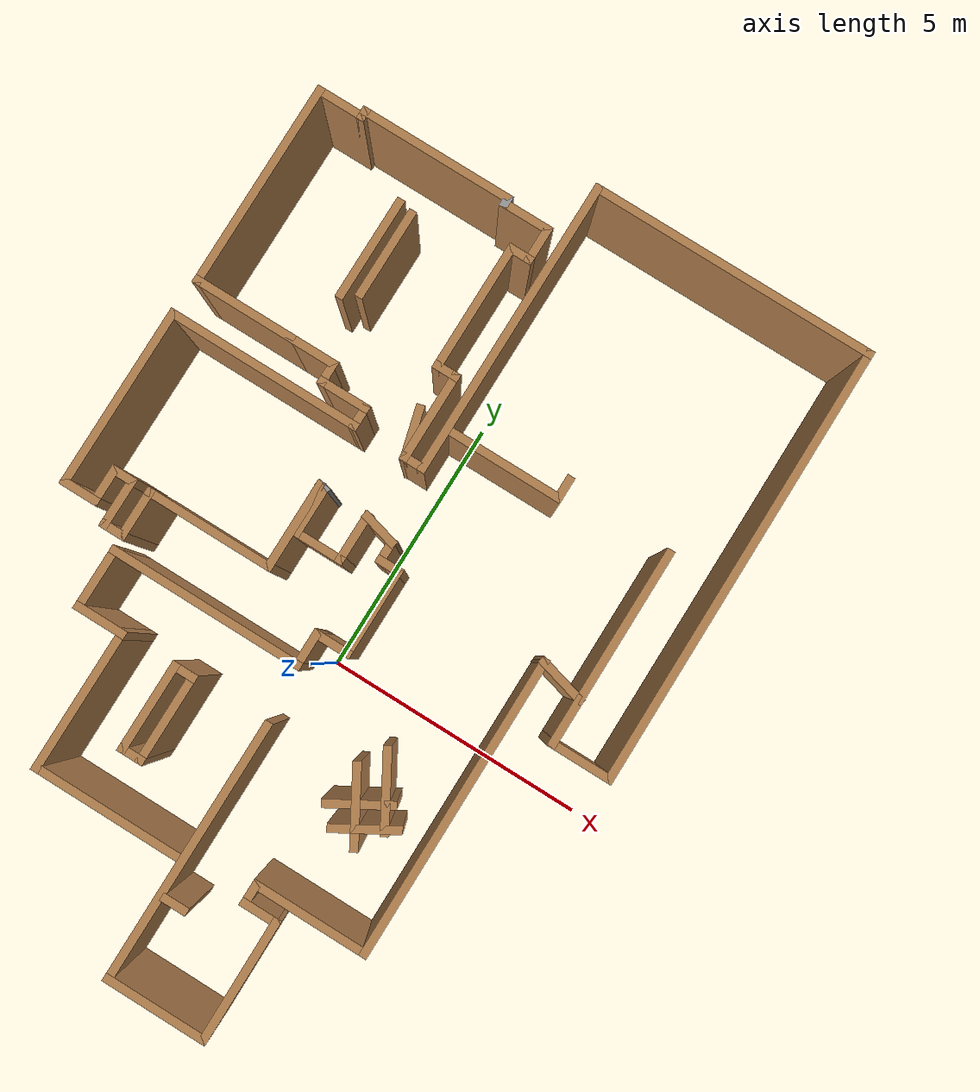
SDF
<?xml version='1.0'?>
<sdf version='1.6'>
  <model name='map_19'>
    <pose frame=''>-0.174403 1.49564 0 0 -0 0</pose>
    <link name='Wall_0'>
      <collision name='Wall_0_Collision'>
        <geometry>
          <box>
            <size>2 0.15 2.5</size>
          </box>
        </geometry>
        <pose frame=''>0 0 1.25 0 -0 0</pose>
      </collision>
      <visual name='Wall_0_Visual'>
        <pose frame=''>0 0 1.25 0 -0 0</pose>
        <geometry>
          <box>
            <size>2 0.15 2.5</size>
          </box>
        </geometry>
        <material>
          <script>
            <uri>file://media/materials/scripts/gazebo.material</uri>
            <name>Gazebo/Wood</name>
          </script>
          <ambient>1 1 1 1</ambient>
        </material>
        <meta>
          <layer>0</layer>
        </meta>
      </visual>
      <pose frame=''>0.811594 -7.72117 0 0 -0 3.14159</pose>
    </link>
    <link name='Wall_1'>
      <collision name='Wall_1_Collision'>
        <geometry>
          <box>
            <size>5 0.15 2.5</size>
          </box>
        </geometry>
        <pose frame=''>0 0 1.25 0 -0 0</pose>
      </collision>
      <visual name='Wall_1_Visual'>
        <pose frame=''>0 0 1.25 0 -0 0</pose>
        <geometry>
          <box>
            <size>5 0.15 2.5</size>
          </box>
        </geometry>
        <material>
          <script>
            <uri>file://media/materials/scripts/gazebo.material</uri>
            <name>Gazebo/Wood</name>
          </script>
          <ambient>1 1 1 1</ambient>
        </material>
        <meta>
          <layer>0</layer>
        </meta>
      </visual>
      <pose frame=''>-0.113406 -5.29617 0 0 -0 1.5708</pose>
    </link>
    <link name='Wall_10'>
      <collision name='Wall_10_Collision'>
        <geometry>
          <box>
            <size>0.75 0.15 2.5</size>
          </box>
        </geometry>
        <pose frame=''>0 0 1.25 0 -0 0</pose>
      </collision>
      <visual name='Wall_10_Visual'>
        <pose frame=''>0 0 1.25 0 -0 0</pose>
        <geometry>
          <box>
            <size>0.75 0.15 2.5</size>
          </box>
        </geometry>
        <material>
          <script>
            <uri>file://media/materials/scripts/gazebo.material</uri>
            <name>Gazebo/Wood</name>
          </script>
          <ambient>1 1 1 1</ambient>
        </material>
        <meta>
          <layer>0</layer>
        </meta>
      </visual>
      <pose frame=''>-0.223852 -1.45974 0 0 -0 1.5708</pose>
    </link>
    <link name='Wall_11'>
      <collision name='Wall_11_Collision'>
        <geometry>
          <box>
            <size>0.75 0.15 2.5</size>
          </box>
        </geometry>
        <pose frame=''>0 0 1.25 0 -0 0</pose>
      </collision>
      <visual name='Wall_11_Visual'>
        <pose frame=''>0 0 1.25 0 -0 0</pose>
        <geometry>
          <box>
            <size>0.75 0.15 2.5</size>
          </box>
        </geometry>
        <material>
          <script>
            <uri>file://media/materials/scripts/gazebo.material</uri>
            <name>Gazebo/Wood</name>
          </script>
          <ambient>1 1 1 1</ambient>
        </material>
        <meta>
          <layer>0</layer>
        </meta>
      </visual>
      <pose frame=''>0.076148 -1.15974 0 0 -0 0</pose>
    </link>
    <link name='Wall_12'>
      <collision name='Wall_12_Collision'>
        <geometry>
          <box>
            <size>1.75 0.15 2.5</size>
          </box>
        </geometry>
        <pose frame=''>0 0 1.25 0 -0 0</pose>
      </collision>
      <visual name='Wall_12_Visual'>
        <pose frame=''>0 0 1.25 0 -0 0</pose>
        <geometry>
          <box>
            <size>1.75 0.15 2.5</size>
          </box>
        </geometry>
        <material>
          <script>
            <uri>file://media/materials/scripts/gazebo.material</uri>
            <name>Gazebo/Wood</name>
          </script>
          <ambient>1 1 1 1</ambient>
        </material>
        <meta>
          <layer>0</layer>
        </meta>
      </visual>
      <pose frame=''>0.376148 -0.359742 0 0 -0 1.5708</pose>
    </link>
    <link name='Wall_13'>
      <collision name='Wall_13_Collision'>
        <geometry>
          <box>
            <size>0.5 0.15 2.5</size>
          </box>
        </geometry>
        <pose frame=''>0 0 1.25 0 -0 0</pose>
      </collision>
      <visual name='Wall_13_Visual'>
        <pose frame=''>0 0 1.25 0 -0 0</pose>
        <geometry>
          <box>
            <size>0.5 0.15 2.5</size>
          </box>
        </geometry>
        <material>
          <script>
            <uri>file://media/materials/scripts/gazebo.material</uri>
            <name>Gazebo/Wood</name>
          </script>
          <ambient>1 1 1 1</ambient>
        </material>
        <meta>
          <layer>0</layer>
        </meta>
      </visual>
      <pose frame=''>0.201148 0.440258 0 0 -0 3.14159</pose>
    </link>
    <link name='Wall_14'>
      <collision name='Wall_14_Collision'>
        <geometry>
          <box>
            <size>0.5 0.15 2.5</size>
          </box>
        </geometry>
        <pose frame=''>0 0 1.25 0 -0 0</pose>
      </collision>
      <visual name='Wall_14_Visual'>
        <pose frame=''>0 0 1.25 0 -0 0</pose>
        <geometry>
          <box>
            <size>0.5 0.15 2.5</size>
          </box>
        </geometry>
        <material>
          <script>
            <uri>file://media/materials/scripts/gazebo.material</uri>
            <name>Gazebo/Wood</name>
          </script>
          <ambient>1 1 1 1</ambient>
        </material>
        <meta>
          <layer>0</layer>
        </meta>
      </visual>
      <pose frame=''>0.026148 0.615258 0 0 -0 1.5708</pose>
    </link>
    <link name='Wall_15'>
      <collision name='Wall_15_Collision'>
        <geometry>
          <box>
            <size>0.75 0.15 2.5</size>
          </box>
        </geometry>
        <pose frame=''>0 0 1.25 0 -0 0</pose>
      </collision>
      <visual name='Wall_15_Visual'>
        <pose frame=''>0 0 1.25 0 -0 0</pose>
        <geometry>
          <box>
            <size>0.75 0.15 2.5</size>
          </box>
        </geometry>
        <material>
          <script>
            <uri>file://media/materials/scripts/gazebo.material</uri>
            <name>Gazebo/Wood</name>
          </script>
          <ambient>1 1 1 1</ambient>
        </material>
        <meta>
          <layer>0</layer>
        </meta>
      </visual>
      <pose frame=''>-0.26363 0.867903 0 0 -0 2.87979</pose>
    </link>
    <link name='Wall_16'>
      <collision name='Wall_16_Collision'>
        <geometry>
          <box>
            <size>1 0.15 2.5</size>
          </box>
        </geometry>
        <pose frame=''>0 0 1.25 0 -0 0</pose>
      </collision>
      <visual name='Wall_16_Visual'>
        <pose frame=''>0 0 1.25 0 -0 0</pose>
        <geometry>
          <box>
            <size>1 0.15 2.5</size>
          </box>
        </geometry>
        <material>
          <script>
            <uri>file://media/materials/scripts/gazebo.material</uri>
            <name>Gazebo/Wood</name>
          </script>
          <ambient>1 1 1 1</ambient>
        </material>
        <meta>
          <layer>0</layer>
        </meta>
      </visual>
      <pose frame=''>-0.553407 0.520549 0 0 -0 -1.5708</pose>
    </link>
    <link name='Wall_17'>
      <collision name='Wall_17_Collision'>
        <geometry>
          <box>
            <size>1 0.15 2.5</size>
          </box>
        </geometry>
        <pose frame=''>0 0 1.25 0 -0 0</pose>
      </collision>
      <visual name='Wall_17_Visual'>
        <pose frame=''>0 0 1.25 0 -0 0</pose>
        <geometry>
          <box>
            <size>1 0.15 2.5</size>
          </box>
        </geometry>
        <material>
          <script>
            <uri>file://media/materials/scripts/gazebo.material</uri>
            <name>Gazebo/Wood</name>
          </script>
          <ambient>1 1 1 1</ambient>
        </material>
        <meta>
          <layer>0</layer>
        </meta>
      </visual>
      <pose frame=''>-0.978407 0.095549 0 0 -0 3.14159</pose>
    </link>
    <link name='Wall_18'>
      <collision name='Wall_18_Collision'>
        <geometry>
          <box>
            <size>1 0.15 2.5</size>
          </box>
        </geometry>
        <pose frame=''>0 0 1.25 0 -0 0</pose>
      </collision>
      <visual name='Wall_18_Visual'>
        <pose frame=''>0 0 1.25 0 -0 0</pose>
        <geometry>
          <box>
            <size>1 0.15 2.5</size>
          </box>
        </geometry>
        <material>
          <script>
            <uri>file://media/materials/scripts/gazebo.material</uri>
            <name>Gazebo/Wood</name>
          </script>
          <ambient>1 1 1 1</ambient>
        </material>
        <meta>
          <layer>0</layer>
        </meta>
      </visual>
      <pose frame=''>-1.40341 0.520549 0 0 -0 1.5708</pose>
    </link>
    <link name='Wall_19'>
      <collision name='Wall_19_Collision'>
        <geometry>
          <box>
            <size>0.25 0.15 2.5</size>
          </box>
        </geometry>
        <pose frame=''>0 0 1.25 0 -0 0</pose>
      </collision>
      <visual name='Wall_19_Visual'>
        <pose frame=''>0 0 1.25 0 -0 0</pose>
        <geometry>
          <box>
            <size>0.25 0.15 2.5</size>
          </box>
        </geometry>
        <material>
          <script>
            <uri>file://media/materials/scripts/gazebo.material</uri>
            <name>Gazebo/Grey</name>
          </script>
          <ambient>1 1 1 1</ambient>
        </material>
        <meta>
          <layer>0</layer>
        </meta>
      </visual>
      <pose frame=''>-1.4517 0.95849 0 0 -0 2.87979</pose>
    </link>
    <link name='Wall_20'>
      <collision name='Wall_20_Collision'>
        <geometry>
          <box>
            <size>1.75 0.15 2.5</size>
          </box>
        </geometry>
        <pose frame=''>0 0 1.25 0 -0 0</pose>
      </collision>
      <visual name='Wall_20_Visual'>
        <pose frame=''>0 0 1.25 0 -0 0</pose>
        <geometry>
          <box>
            <size>1.75 0.15 2.5</size>
          </box>
        </geometry>
        <material>
          <script>
            <uri>file://media/materials/scripts/gazebo.material</uri>
            <name>Gazebo/Wood</name>
          </script>
          <ambient>1 1 1 1</ambient>
        </material>
        <meta>
          <layer>0</layer>
        </meta>
      </visual>
      <pose frame=''>-1.5 0.171431 0 0 -0 -1.5708</pose>
    </link>
    <link name='Wall_21'>
      <collision name='Wall_21_Collision'>
        <geometry>
          <box>
            <size>2.5 0.15 2.5</size>
          </box>
        </geometry>
        <pose frame=''>0 0 1.25 0 -0 0</pose>
      </collision>
      <visual name='Wall_21_Visual'>
        <pose frame=''>0 0 1.25 0 -0 0</pose>
        <geometry>
          <box>
            <size>2.5 0.15 2.5</size>
          </box>
        </geometry>
        <material>
          <script>
            <uri>file://media/materials/scripts/gazebo.material</uri>
            <name>Gazebo/Wood</name>
          </script>
          <ambient>1 1 1 1</ambient>
        </material>
        <meta>
          <layer>0</layer>
        </meta>
      </visual>
      <pose frame=''>-2.675 -0.628569 0 0 -0 3.14159</pose>
    </link>
    <link name='Wall_22'>
      <collision name='Wall_22_Collision'>
        <geometry>
          <box>
            <size>1 0.15 2.5</size>
          </box>
        </geometry>
        <pose frame=''>0 0 1.25 0 -0 0</pose>
      </collision>
      <visual name='Wall_22_Visual'>
        <pose frame=''>0 0 1.25 0 -0 0</pose>
        <geometry>
          <box>
            <size>1 0.15 2.5</size>
          </box>
        </geometry>
        <material>
          <script>
            <uri>file://media/materials/scripts/gazebo.material</uri>
            <name>Gazebo/Wood</name>
          </script>
          <ambient>1 1 1 1</ambient>
        </material>
        <meta>
          <layer>0</layer>
        </meta>
      </visual>
      <pose frame=''>-3.85 -1.05357 0 0 -0 -1.5708</pose>
    </link>
    <link name='Wall_23'>
      <collision name='Wall_23_Collision'>
        <geometry>
          <box>
            <size>0.5 0.15 2.5</size>
          </box>
        </geometry>
        <pose frame=''>0 0 1.25 0 -0 0</pose>
      </collision>
      <visual name='Wall_23_Visual'>
        <pose frame=''>0 0 1.25 0 -0 0</pose>
        <geometry>
          <box>
            <size>0.5 0.15 2.5</size>
          </box>
        </geometry>
        <material>
          <script>
            <uri>file://media/materials/scripts/gazebo.material</uri>
            <name>Gazebo/Wood</name>
          </script>
          <ambient>1 1 1 1</ambient>
        </material>
        <meta>
          <layer>0</layer>
        </meta>
      </visual>
      <pose frame=''>-4.025 -1.47857 0 0 -0 3.14159</pose>
    </link>
    <link name='Wall_24'>
      <collision name='Wall_24_Collision'>
        <geometry>
          <box>
            <size>1 0.15 2.5</size>
          </box>
        </geometry>
        <pose frame=''>0 0 1.25 0 -0 0</pose>
      </collision>
      <visual name='Wall_24_Visual'>
        <pose frame=''>0 0 1.25 0 -0 0</pose>
        <geometry>
          <box>
            <size>1 0.15 2.5</size>
          </box>
        </geometry>
        <material>
          <script>
            <uri>file://media/materials/scripts/gazebo.material</uri>
            <name>Gazebo/Wood</name>
          </script>
          <ambient>1 1 1 1</ambient>
        </material>
        <meta>
          <layer>0</layer>
        </meta>
      </visual>
      <pose frame=''>-4.2 -1.05357 0 0 -0 1.5708</pose>
    </link>
    <link name='Wall_25'>
      <collision name='Wall_25_Collision'>
        <geometry>
          <box>
            <size>0.5 0.15 2.5</size>
          </box>
        </geometry>
        <pose frame=''>0 0 1.25 0 -0 0</pose>
      </collision>
      <visual name='Wall_25_Visual'>
        <pose frame=''>0 0 1.25 0 -0 0</pose>
        <geometry>
          <box>
            <size>0.5 0.15 2.5</size>
          </box>
        </geometry>
        <material>
          <script>
            <uri>file://media/materials/scripts/gazebo.material</uri>
            <name>Gazebo/Wood</name>
          </script>
          <ambient>1 1 1 1</ambient>
        </material>
        <meta>
          <layer>0</layer>
        </meta>
      </visual>
      <pose frame=''>-4.375 -0.628569 0 0 -0 3.14159</pose>
    </link>
    <link name='Wall_26'>
      <collision name='Wall_26_Collision'>
        <geometry>
          <box>
            <size>0.75 0.15 2.5</size>
          </box>
        </geometry>
        <pose frame=''>0 0 1.25 0 -0 0</pose>
      </collision>
      <visual name='Wall_26_Visual'>
        <pose frame=''>0 0 1.25 0 -0 0</pose>
        <geometry>
          <box>
            <size>0.75 0.15 2.5</size>
          </box>
        </geometry>
        <material>
          <script>
            <uri>file://media/materials/scripts/gazebo.material</uri>
            <name>Gazebo/Wood</name>
          </script>
          <ambient>1 1 1 1</ambient>
        </material>
        <meta>
          <layer>0</layer>
        </meta>
      </visual>
      <pose frame=''>-4.55 -0.928569 0 0 -0 -1.5708</pose>
    </link>
    <link name='Wall_27'>
      <collision name='Wall_27_Collision'>
        <geometry>
          <box>
            <size>0.75 0.15 2.5</size>
          </box>
        </geometry>
        <pose frame=''>0 0 1.25 0 -0 0</pose>
      </collision>
      <visual name='Wall_27_Visual'>
        <pose frame=''>0 0 1.25 0 -0 0</pose>
        <geometry>
          <box>
            <size>0.75 0.15 2.5</size>
          </box>
        </geometry>
        <material>
          <script>
            <uri>file://media/materials/scripts/gazebo.material</uri>
            <name>Gazebo/Wood</name>
          </script>
          <ambient>1 1 1 1</ambient>
        </material>
        <meta>
          <layer>0</layer>
        </meta>
      </visual>
      <pose frame=''>-4.85 -1.22857 0 0 -0 3.14159</pose>
    </link>
    <link name='Wall_28'>
      <collision name='Wall_28_Collision'>
        <geometry>
          <box>
            <size>3.5 0.15 2.5</size>
          </box>
        </geometry>
        <pose frame=''>0 0 1.25 0 -0 0</pose>
      </collision>
      <visual name='Wall_28_Visual'>
        <pose frame=''>0 0 1.25 0 -0 0</pose>
        <geometry>
          <box>
            <size>3.5 0.15 2.5</size>
          </box>
        </geometry>
        <material>
          <script>
            <uri>file://media/materials/scripts/gazebo.material</uri>
            <name>Gazebo/Wood</name>
          </script>
          <ambient>1 1 1 1</ambient>
        </material>
        <meta>
          <layer>0</layer>
        </meta>
      </visual>
      <pose frame=''>-5.15 0.446431 0 0 -0 1.5708</pose>
    </link>
    <link name='Wall_29'>
      <collision name='Wall_29_Collision'>
        <geometry>
          <box>
            <size>3.75 0.15 2.5</size>
          </box>
        </geometry>
        <pose frame=''>0 0 1.25 0 -0 0</pose>
      </collision>
      <visual name='Wall_29_Visual'>
        <pose frame=''>0 0 1.25 0 -0 0</pose>
        <geometry>
          <box>
            <size>3.75 0.15 2.5</size>
          </box>
        </geometry>
        <material>
          <script>
            <uri>file://media/materials/scripts/gazebo.material</uri>
            <name>Gazebo/Wood</name>
          </script>
          <ambient>1 1 1 1</ambient>
        </material>
        <meta>
          <layer>0</layer>
        </meta>
      </visual>
      <pose frame=''>-3.35 2.12143 0 0 -0 0</pose>
    </link>
    <link name='Wall_3'>
      <collision name='Wall_3_Collision'>
        <geometry>
          <box>
            <size>0.5 0.15 2.5</size>
          </box>
        </geometry>
        <pose frame=''>0 0 1.25 0 -0 0</pose>
      </collision>
      <visual name='Wall_3_Visual'>
        <pose frame=''>0 0 1.25 0 -0 0</pose>
        <geometry>
          <box>
            <size>0.5 0.15 2.5</size>
          </box>
        </geometry>
        <material>
          <script>
            <uri>file://media/materials/scripts/gazebo.material</uri>
            <name>Gazebo/Wood</name>
          </script>
          <ambient>1 1 1 1</ambient>
        </material>
        <meta>
          <layer>0</layer>
        </meta>
      </visual>
      <pose frame=''>0.160001 -6.13273 0 0 -0 3.14159</pose>
    </link>
    <link name='Wall_31'>
      <collision name='Wall_31_Collision'>
        <geometry>
          <box>
            <size>0.5 0.15 2.5</size>
          </box>
        </geometry>
        <pose frame=''>0 0 1.25 0 -0 0</pose>
      </collision>
      <visual name='Wall_31_Visual'>
        <pose frame=''>0 0 1.25 0 -0 0</pose>
        <geometry>
          <box>
            <size>0.5 0.15 2.5</size>
          </box>
        </geometry>
        <material>
          <script>
            <uri>file://media/materials/scripts/gazebo.material</uri>
            <name>Gazebo/Wood</name>
          </script>
          <ambient>1 1 1 1</ambient>
        </material>
        <meta>
          <layer>0</layer>
        </meta>
      </visual>
      <pose frame=''>-1.55 2.29643 0 0 -0 1.5708</pose>
    </link>
    <link name='Wall_32'>
      <collision name='Wall_32_Collision'>
        <geometry>
          <box>
            <size>1 0.15 2.5</size>
          </box>
        </geometry>
        <pose frame=''>0 0 1.25 0 -0 0</pose>
      </collision>
      <visual name='Wall_32_Visual'>
        <pose frame=''>0 0 1.25 0 -0 0</pose>
        <geometry>
          <box>
            <size>1 0.15 2.5</size>
          </box>
        </geometry>
        <material>
          <script>
            <uri>file://media/materials/scripts/gazebo.material</uri>
            <name>Gazebo/Wood</name>
          </script>
          <ambient>1 1 1 1</ambient>
        </material>
        <meta>
          <layer>0</layer>
        </meta>
      </visual>
      <pose frame=''>-1.975 2.47143 0 0 -0 3.14159</pose>
    </link>
    <link name='Wall_33'>
      <collision name='Wall_33_Collision'>
        <geometry>
          <box>
            <size>0.5 0.15 2.5</size>
          </box>
        </geometry>
        <pose frame=''>0 0 1.25 0 -0 0</pose>
      </collision>
      <visual name='Wall_33_Visual'>
        <pose frame=''>0 0 1.25 0 -0 0</pose>
        <geometry>
          <box>
            <size>0.5 0.15 2.5</size>
          </box>
        </geometry>
        <material>
          <script>
            <uri>file://media/materials/scripts/gazebo.material</uri>
            <name>Gazebo/Wood</name>
          </script>
          <ambient>1 1 1 1</ambient>
        </material>
        <meta>
          <layer>0</layer>
        </meta>
      </visual>
      <pose frame=''>-2.4 2.64643 0 0 -0 1.5708</pose>
    </link>
    <link name='Wall_34'>
      <collision name='Wall_34_Collision'>
        <geometry>
          <box>
            <size>1 0.15 2.5</size>
          </box>
        </geometry>
        <pose frame=''>0 0 1.25 0 -0 0</pose>
      </collision>
      <visual name='Wall_34_Visual'>
        <pose frame=''>0 0 1.25 0 -0 0</pose>
        <geometry>
          <box>
            <size>1 0.15 2.5</size>
          </box>
        </geometry>
        <material>
          <script>
            <uri>file://media/materials/scripts/gazebo.material</uri>
            <name>Gazebo/Wood</name>
          </script>
          <ambient>1 1 1 1</ambient>
        </material>
        <meta>
          <layer>0</layer>
        </meta>
      </visual>
      <pose frame=''>-2.825 2.82143 0 0 -0 3.14159</pose>
    </link>
    <link name='Wall_35'>
      <collision name='Wall_35_Collision'>
        <geometry>
          <box>
            <size>2 0.15 2.5</size>
          </box>
        </geometry>
        <pose frame=''>0 0 1.25 0 -0 0</pose>
      </collision>
      <visual name='Wall_35_Visual'>
        <pose frame=''>0 0 1.25 0 -0 0</pose>
        <geometry>
          <box>
            <size>2 0.15 2.5</size>
          </box>
        </geometry>
        <material>
          <script>
            <uri>file://media/materials/scripts/gazebo.material</uri>
            <name>Gazebo/Wood</name>
          </script>
          <ambient>1 1 1 1</ambient>
        </material>
        <meta>
          <layer>0</layer>
        </meta>
      </visual>
      <pose frame=''>-4.175 2.82143 0 0 -0 3.14159</pose>
    </link>
    <link name='Wall_36'>
      <collision name='Wall_36_Collision'>
        <geometry>
          <box>
            <size>4 0.15 2.5</size>
          </box>
        </geometry>
        <pose frame=''>0 0 1.25 0 -0 0</pose>
      </collision>
      <visual name='Wall_36_Visual'>
        <pose frame=''>0 0 1.25 0 -0 0</pose>
        <geometry>
          <box>
            <size>4 0.15 2.5</size>
          </box>
        </geometry>
        <material>
          <script>
            <uri>file://media/materials/scripts/gazebo.material</uri>
            <name>Gazebo/Wood</name>
          </script>
          <ambient>1 1 1 1</ambient>
        </material>
        <meta>
          <layer>0</layer>
        </meta>
      </visual>
      <pose frame=''>-5.1 4.74643 0 0 -0 1.5708</pose>
    </link>
    <link name='Wall_37'>
      <collision name='Wall_37_Collision'>
        <geometry>
          <box>
            <size>1 0.15 2.5</size>
          </box>
        </geometry>
        <pose frame=''>0 0 1.25 0 -0 0</pose>
      </collision>
      <visual name='Wall_37_Visual'>
        <pose frame=''>0 0 1.25 0 -0 0</pose>
        <geometry>
          <box>
            <size>1 0.15 2.5</size>
          </box>
        </geometry>
        <material>
          <script>
            <uri>file://media/materials/scripts/gazebo.material</uri>
            <name>Gazebo/Wood</name>
          </script>
          <ambient>1 1 1 1</ambient>
        </material>
        <meta>
          <layer>0</layer>
        </meta>
      </visual>
      <pose frame=''>-4.675 6.67143 0 0 -0 0</pose>
    </link>
    <link name='Wall_39'>
      <collision name='Wall_39_Collision'>
        <geometry>
          <box>
            <size>0.25 0.15 2.5</size>
          </box>
        </geometry>
        <pose frame=''>0 0 1.25 0 -0 0</pose>
      </collision>
      <visual name='Wall_39_Visual'>
        <pose frame=''>0 0 1.25 0 -0 0</pose>
        <geometry>
          <box>
            <size>0.25 0.15 2.5</size>
          </box>
        </geometry>
        <material>
          <script>
            <uri>file://media/materials/scripts/gazebo.material</uri>
            <name>Gazebo/Wood</name>
          </script>
          <ambient>1 1 1 1</ambient>
        </material>
        <meta>
          <layer>0</layer>
        </meta>
      </visual>
      <pose frame=''>-4.25 6.72143 0 0 -0 1.5708</pose>
    </link>
    <link name='Wall_40'>
      <collision name='Wall_40_Collision'>
        <geometry>
          <box>
            <size>3 0.15 2.5</size>
          </box>
        </geometry>
        <pose frame=''>0 0 1.25 0 -0 0</pose>
      </collision>
      <visual name='Wall_40_Visual'>
        <pose frame=''>0 0 1.25 0 -0 0</pose>
        <geometry>
          <box>
            <size>3 0.15 2.5</size>
          </box>
        </geometry>
        <material>
          <script>
            <uri>file://media/materials/scripts/gazebo.material</uri>
            <name>Gazebo/Wood</name>
          </script>
          <ambient>1 1 1 1</ambient>
        </material>
        <meta>
          <layer>0</layer>
        </meta>
      </visual>
      <pose frame=''>-2.825 6.77143 0 0 -0 0</pose>
    </link>
    <link name='Wall_41'>
      <collision name='Wall_41_Collision'>
        <geometry>
          <box>
            <size>0.25 0.15 2.5</size>
          </box>
        </geometry>
        <pose frame=''>0 0 1.25 0 -0 0</pose>
      </collision>
      <visual name='Wall_41_Visual'>
        <pose frame=''>0 0 1.25 0 -0 0</pose>
        <geometry>
          <box>
            <size>0.25 0.15 2.5</size>
          </box>
        </geometry>
        <material>
          <script>
            <uri>file://media/materials/scripts/gazebo.material</uri>
            <name>Gazebo/Grey</name>
          </script>
          <ambient>1 1 1 1</ambient>
        </material>
        <meta>
          <layer>0</layer>
        </meta>
      </visual>
      <pose frame=''>-1.4 6.72143 0 0 -0 -1.5708</pose>
    </link>
    <link name='Wall_42'>
      <collision name='Wall_42_Collision'>
        <geometry>
          <box>
            <size>1 0.15 2.5</size>
          </box>
        </geometry>
        <pose frame=''>0 0 1.25 0 -0 0</pose>
      </collision>
      <visual name='Wall_42_Visual'>
        <pose frame=''>0 0 1.25 0 -0 0</pose>
        <geometry>
          <box>
            <size>1 0.15 2.5</size>
          </box>
        </geometry>
        <material>
          <script>
            <uri>file://media/materials/scripts/gazebo.material</uri>
            <name>Gazebo/Wood</name>
          </script>
          <ambient>1 1 1 1</ambient>
        </material>
        <meta>
          <layer>0</layer>
        </meta>
      </visual>
      <pose frame=''>-0.975 6.67143 0 0 -0 0</pose>
    </link>
    <link name='Wall_43'>
      <collision name='Wall_43_Collision'>
        <geometry>
          <box>
            <size>0.75 0.15 2.5</size>
          </box>
        </geometry>
        <pose frame=''>0 0 1.25 0 -0 0</pose>
      </collision>
      <visual name='Wall_43_Visual'>
        <pose frame=''>0 0 1.25 0 -0 0</pose>
        <geometry>
          <box>
            <size>0.75 0.15 2.5</size>
          </box>
        </geometry>
        <material>
          <script>
            <uri>file://media/materials/scripts/gazebo.material</uri>
            <name>Gazebo/Wood</name>
          </script>
          <ambient>1 1 1 1</ambient>
        </material>
        <meta>
          <layer>0</layer>
        </meta>
      </visual>
      <pose frame=''>-0.55 6.37143 0 0 -0 -1.5708</pose>
    </link>
    <link name='Wall_44'>
      <collision name='Wall_44_Collision'>
        <geometry>
          <box>
            <size>0.5 0.15 2.5</size>
          </box>
        </geometry>
        <pose frame=''>0 0 1.25 0 -0 0</pose>
      </collision>
      <visual name='Wall_44_Visual'>
        <pose frame=''>0 0 1.25 0 -0 0</pose>
        <geometry>
          <box>
            <size>0.5 0.15 2.5</size>
          </box>
        </geometry>
        <material>
          <script>
            <uri>file://media/materials/scripts/gazebo.material</uri>
            <name>Gazebo/Wood</name>
          </script>
          <ambient>1 1 1 1</ambient>
        </material>
        <meta>
          <layer>0</layer>
        </meta>
      </visual>
      <pose frame=''>-0.725 6.07143 0 0 -0 3.14159</pose>
    </link>
    <link name='Wall_45'>
      <collision name='Wall_45_Collision'>
        <geometry>
          <box>
            <size>2.5 0.15 2.5</size>
          </box>
        </geometry>
        <pose frame=''>0 0 1.25 0 -0 0</pose>
      </collision>
      <visual name='Wall_45_Visual'>
        <pose frame=''>0 0 1.25 0 -0 0</pose>
        <geometry>
          <box>
            <size>2.5 0.15 2.5</size>
          </box>
        </geometry>
        <material>
          <script>
            <uri>file://media/materials/scripts/gazebo.material</uri>
            <name>Gazebo/Wood</name>
          </script>
          <ambient>1 1 1 1</ambient>
        </material>
        <meta>
          <layer>0</layer>
        </meta>
      </visual>
      <pose frame=''>-0.9 4.89643 0 0 -0 -1.5708</pose>
    </link>
    <link name='Wall_46'>
      <collision name='Wall_46_Collision'>
        <geometry>
          <box>
            <size>0.5 0.15 2.5</size>
          </box>
        </geometry>
        <pose frame=''>0 0 1.25 0 -0 0</pose>
      </collision>
      <visual name='Wall_46_Visual'>
        <pose frame=''>0 0 1.25 0 -0 0</pose>
        <geometry>
          <box>
            <size>0.5 0.15 2.5</size>
          </box>
        </geometry>
        <material>
          <script>
            <uri>file://media/materials/scripts/gazebo.material</uri>
            <name>Gazebo/Wood</name>
          </script>
          <ambient>1 1 1 1</ambient>
        </material>
        <meta>
          <layer>0</layer>
        </meta>
      </visual>
      <pose frame=''>-0.725 3.72143 0 0 -0 0</pose>
    </link>
    <link name='Wall_47'>
      <collision name='Wall_47_Collision'>
        <geometry>
          <box>
            <size>1.75 0.15 2.5</size>
          </box>
        </geometry>
        <pose frame=''>0 0 1.25 0 -0 0</pose>
      </collision>
      <visual name='Wall_47_Visual'>
        <pose frame=''>0 0 1.25 0 -0 0</pose>
        <geometry>
          <box>
            <size>1.75 0.15 2.5</size>
          </box>
        </geometry>
        <material>
          <script>
            <uri>file://media/materials/scripts/gazebo.material</uri>
            <name>Gazebo/Wood</name>
          </script>
          <ambient>1 1 1 1</ambient>
        </material>
        <meta>
          <layer>0</layer>
        </meta>
      </visual>
      <pose frame=''>-0.55 2.92143 0 0 -0 -1.5708</pose>
    </link>
    <link name='Wall_48'>
      <collision name='Wall_48_Collision'>
        <geometry>
          <box>
            <size>1 0.15 2.5</size>
          </box>
        </geometry>
        <pose frame=''>0 0 1.25 0 -0 0</pose>
      </collision>
      <visual name='Wall_48_Visual'>
        <pose frame=''>0 0 1.25 0 -0 0</pose>
        <geometry>
          <box>
            <size>1 0.15 2.5</size>
          </box>
        </geometry>
        <material>
          <script>
            <uri>file://media/materials/scripts/gazebo.material</uri>
            <name>Gazebo/Wood</name>
          </script>
          <ambient>1 1 1 1</ambient>
        </material>
        <meta>
          <layer>0</layer>
        </meta>
      </visual>
      <pose frame=''>-0.659998 2.53195 0 0 -0 1.8326</pose>
    </link>
    <link name='Wall_5'>
      <collision name='Wall_5_Collision'>
        <geometry>
          <box>
            <size>3 0.15 2.5</size>
          </box>
        </geometry>
        <pose frame=''>0 0 1.25 0 -0 0</pose>
      </collision>
      <visual name='Wall_5_Visual'>
        <pose frame=''>0 0 1.25 0 -0 0</pose>
        <geometry>
          <box>
            <size>3 0.15 2.5</size>
          </box>
        </geometry>
        <material>
          <script>
            <uri>file://media/materials/scripts/gazebo.material</uri>
            <name>Gazebo/Wood</name>
          </script>
          <ambient>1 1 1 1</ambient>
        </material>
        <meta>
          <layer>0</layer>
        </meta>
      </visual>
      <pose frame=''>-1.54885 -5.45974 0 0 -0 3.14159</pose>
    </link>
    <link name='Wall_50'>
      <collision name='Wall_50_Collision'>
        <geometry>
          <box>
            <size>0.5 0.15 2.5</size>
          </box>
        </geometry>
        <pose frame=''>0 0 1.25 0 -0 0</pose>
      </collision>
      <visual name='Wall_50_Visual'>
        <pose frame=''>0 0 1.25 0 -0 0</pose>
        <geometry>
          <box>
            <size>0.5 0.15 2.5</size>
          </box>
        </geometry>
        <material>
          <script>
            <uri>file://media/materials/scripts/gazebo.material</uri>
            <name>Gazebo/Wood</name>
          </script>
          <ambient>1 1 1 1</ambient>
        </material>
        <meta>
          <layer>0</layer>
        </meta>
      </visual>
      <pose frame=''>-0.375 2.12143 0 0 -0 0</pose>
    </link>
    <link name='Wall_53'>
      <collision name='Wall_53_Collision'>
        <geometry>
          <box>
            <size>5.75 0.15 2.5</size>
          </box>
        </geometry>
        <pose frame=''>0 0 1.25 0 -0 0</pose>
      </collision>
      <visual name='Wall_53_Visual'>
        <pose frame=''>0 0 1.25 0 -0 0</pose>
        <geometry>
          <box>
            <size>5.75 0.15 2.5</size>
          </box>
        </geometry>
        <material>
          <script>
            <uri>file://media/materials/scripts/gazebo.material</uri>
            <name>Gazebo/Wood</name>
          </script>
          <ambient>1 1 1 1</ambient>
        </material>
        <meta>
          <layer>0</layer>
        </meta>
      </visual>
      <pose frame=''>-0.2 4.92143 0 0 -0 1.5708</pose>
    </link>
    <link name='Wall_54'>
      <collision name='Wall_54_Collision'>
        <geometry>
          <box>
            <size>5.5 0.15 2.5</size>
          </box>
        </geometry>
        <pose frame=''>0 0 1.25 0 -0 0</pose>
      </collision>
      <visual name='Wall_54_Visual'>
        <pose frame=''>0 0 1.25 0 -0 0</pose>
        <geometry>
          <box>
            <size>5.5 0.15 2.5</size>
          </box>
        </geometry>
        <material>
          <script>
            <uri>file://media/materials/scripts/gazebo.material</uri>
            <name>Gazebo/Wood</name>
          </script>
          <ambient>1 1 1 1</ambient>
        </material>
        <meta>
          <layer>0</layer>
        </meta>
      </visual>
      <pose frame=''>2.475 7.72143 0 0 -0 0</pose>
    </link>
    <link name='Wall_56'>
      <collision name='Wall_56_Collision'>
        <geometry>
          <box>
            <size>8.5 0.15 2.5</size>
          </box>
        </geometry>
        <pose frame=''>0 0 1.25 0 -0 0</pose>
      </collision>
      <visual name='Wall_56_Visual'>
        <pose frame=''>0 0 1.25 0 -0 0</pose>
        <geometry>
          <box>
            <size>8.5 0.15 2.5</size>
          </box>
        </geometry>
        <material>
          <script>
            <uri>file://media/materials/scripts/gazebo.material</uri>
            <name>Gazebo/Wood</name>
          </script>
          <ambient>1 1 1 1</ambient>
        </material>
        <meta>
          <layer>0</layer>
        </meta>
      </visual>
      <pose frame=''>5.15 3.54643 0 0 -0 -1.5708</pose>
    </link>
    <link name='Wall_57'>
      <collision name='Wall_57_Collision'>
        <geometry>
          <box>
            <size>1.25 0.15 2.5</size>
          </box>
        </geometry>
        <pose frame=''>0 0 1.25 0 -0 0</pose>
      </collision>
      <visual name='Wall_57_Visual'>
        <pose frame=''>0 0 1.25 0 -0 0</pose>
        <geometry>
          <box>
            <size>1.25 0.15 2.5</size>
          </box>
        </geometry>
        <material>
          <script>
            <uri>file://media/materials/scripts/gazebo.material</uri>
            <name>Gazebo/Wood</name>
          </script>
          <ambient>1 1 1 1</ambient>
        </material>
        <meta>
          <layer>0</layer>
        </meta>
      </visual>
      <pose frame=''>4.6 -0.628569 0 0 -0 3.14159</pose>
    </link>
    <link name='Wall_58'>
      <collision name='Wall_58_Collision'>
        <geometry>
          <box>
            <size>1 0.15 2.5</size>
          </box>
        </geometry>
        <pose frame=''>0 0 1.25 0 -0 0</pose>
      </collision>
      <visual name='Wall_58_Visual'>
        <pose frame=''>0 0 1.25 0 -0 0</pose>
        <geometry>
          <box>
            <size>1 0.15 2.5</size>
          </box>
        </geometry>
        <material>
          <script>
            <uri>file://media/materials/scripts/gazebo.material</uri>
            <name>Gazebo/Wood</name>
          </script>
          <ambient>1 1 1 1</ambient>
        </material>
        <meta>
          <layer>0</layer>
        </meta>
      </visual>
      <pose frame=''>4.05 -0.203569 0 0 -0 1.5708</pose>
    </link>
    <link name='Wall_59'>
      <collision name='Wall_59_Collision'>
        <geometry>
          <box>
            <size>1 0.15 2.5</size>
          </box>
        </geometry>
        <pose frame=''>0 0 1.25 0 -0 0</pose>
      </collision>
      <visual name='Wall_59_Visual'>
        <pose frame=''>0 0 1.25 0 -0 0</pose>
        <geometry>
          <box>
            <size>1 0.15 2.5</size>
          </box>
        </geometry>
        <material>
          <script>
            <uri>file://media/materials/scripts/gazebo.material</uri>
            <name>Gazebo/Wood</name>
          </script>
          <ambient>1 1 1 1</ambient>
        </material>
        <meta>
          <layer>0</layer>
        </meta>
      </visual>
      <pose frame=''>3.63948 0.331429 0 0 -0 2.87979</pose>
    </link>
    <link name='Wall_6'>
      <collision name='Wall_6_Collision'>
        <geometry>
          <box>
            <size>2.75 0.15 2.5</size>
          </box>
        </geometry>
        <pose frame=''>0 0 1.25 0 -0 0</pose>
      </collision>
      <visual name='Wall_6_Visual'>
        <pose frame=''>0 0 1.25 0 -0 0</pose>
        <geometry>
          <box>
            <size>2.75 0.15 2.5</size>
          </box>
        </geometry>
        <material>
          <script>
            <uri>file://media/materials/scripts/gazebo.material</uri>
            <name>Gazebo/Wood</name>
          </script>
          <ambient>1 1 1 1</ambient>
        </material>
        <meta>
          <layer>0</layer>
        </meta>
      </visual>
      <pose frame=''>-2.97385 -4.15974 0 0 -0 1.5708</pose>
    </link>
    <link name='Wall_60'>
      <collision name='Wall_60_Collision'>
        <geometry>
          <box>
            <size>5.75 0.15 2.5</size>
          </box>
        </geometry>
        <pose frame=''>0 0 1.25 0 -0 0</pose>
      </collision>
      <visual name='Wall_60_Visual'>
        <pose frame=''>0 0 1.25 0 -0 0</pose>
        <geometry>
          <box>
            <size>5.75 0.15 2.5</size>
          </box>
        </geometry>
        <material>
          <script>
            <uri>file://media/materials/scripts/gazebo.material</uri>
            <name>Gazebo/Wood</name>
          </script>
          <ambient>1 1 1 1</ambient>
        </material>
        <meta>
          <layer>0</layer>
        </meta>
      </visual>
      <pose frame=''>3.22896 -2.35857 0 0 -0 -1.5708</pose>
    </link>
    <link name='Wall_62'>
      <collision name='Wall_62_Collision'>
        <geometry>
          <box>
            <size>2.25 0.15 2.5</size>
          </box>
        </geometry>
        <pose frame=''>0 0 1.25 0 -0 0</pose>
      </collision>
      <visual name='Wall_62_Visual'>
        <pose frame=''>0 0 1.25 0 -0 0</pose>
        <geometry>
          <box>
            <size>2.25 0.15 2.5</size>
          </box>
        </geometry>
        <material>
          <script>
            <uri>file://media/materials/scripts/gazebo.material</uri>
            <name>Gazebo/Wood</name>
          </script>
          <ambient>1 1 1 1</ambient>
        </material>
        <meta>
          <layer>0</layer>
        </meta>
      </visual>
      <pose frame=''>2.17896 -5.15857 0 0 -0 3.14159</pose>
    </link>
    <link name='Wall_63'>
      <collision name='Wall_63_Collision'>
        <geometry>
          <box>
            <size>0.5 0.15 2.5</size>
          </box>
        </geometry>
        <pose frame=''>0 0 1.25 0 -0 0</pose>
      </collision>
      <visual name='Wall_63_Visual'>
        <pose frame=''>0 0 1.25 0 -0 0</pose>
        <geometry>
          <box>
            <size>0.5 0.15 2.5</size>
          </box>
        </geometry>
        <material>
          <script>
            <uri>file://media/materials/scripts/gazebo.material</uri>
            <name>Gazebo/Wood</name>
          </script>
          <ambient>1 1 1 1</ambient>
        </material>
        <meta>
          <layer>0</layer>
        </meta>
      </visual>
      <pose frame=''>1.12896 -5.33357 0 0 -0 -1.5708</pose>
    </link>
    <link name='Wall_64'>
      <collision name='Wall_64_Collision'>
        <geometry>
          <box>
            <size>0.75 0.15 2.5</size>
          </box>
        </geometry>
        <pose frame=''>0 0 1.25 0 -0 0</pose>
      </collision>
      <visual name='Wall_64_Visual'>
        <pose frame=''>0 0 1.25 0 -0 0</pose>
        <geometry>
          <box>
            <size>0.75 0.15 2.5</size>
          </box>
        </geometry>
        <material>
          <script>
            <uri>file://media/materials/scripts/gazebo.material</uri>
            <name>Gazebo/Wood</name>
          </script>
          <ambient>1 1 1 1</ambient>
        </material>
        <meta>
          <layer>0</layer>
        </meta>
      </visual>
      <pose frame=''>1.42896 -5.50857 0 0 -0 0</pose>
    </link>
    <link name='Wall_65'>
      <collision name='Wall_65_Collision'>
        <geometry>
          <box>
            <size>2.36261 0.15 2.5</size>
          </box>
        </geometry>
        <pose frame=''>0 0 1.25 0 -0 0</pose>
      </collision>
      <visual name='Wall_65_Visual'>
        <pose frame=''>0 0 1.25 0 -0 0</pose>
        <geometry>
          <box>
            <size>2.36261 0.15 2.5</size>
          </box>
        </geometry>
        <material>
          <script>
            <uri>file://media/materials/scripts/gazebo.material</uri>
            <name>Gazebo/Wood</name>
          </script>
          <ambient>1 1 1 1</ambient>
        </material>
        <meta>
          <layer>0</layer>
        </meta>
      </visual>
      <pose frame=''>1.73278 -6.61487 0 0 -0 -1.56735</pose>
    </link>
    <link name='Wall_67'>
      <collision name='Wall_67_Collision'>
        <geometry>
          <box>
            <size>0.5 0.15 2.5</size>
          </box>
        </geometry>
        <pose frame=''>0 0 1.25 0 -0 0</pose>
      </collision>
      <visual name='Wall_67_Visual'>
        <pose frame=''>0 0 1.25 0 -0 0</pose>
        <geometry>
          <box>
            <size>0.5 0.15 2.5</size>
          </box>
        </geometry>
        <material>
          <script>
            <uri>file://media/materials/scripts/gazebo.material</uri>
            <name>Gazebo/Wood</name>
          </script>
          <ambient>1 1 1 1</ambient>
        </material>
        <meta>
          <layer>0</layer>
        </meta>
      </visual>
      <pose frame=''>-1.76031 -2.84872 0 0 -0 0</pose>
    </link>
    <link name='Wall_68'>
      <collision name='Wall_68_Collision'>
        <geometry>
          <box>
            <size>1.75 0.15 2.5</size>
          </box>
        </geometry>
        <pose frame=''>0 0 1.25 0 -0 0</pose>
      </collision>
      <visual name='Wall_68_Visual'>
        <pose frame=''>0 0 1.25 0 -0 0</pose>
        <geometry>
          <box>
            <size>1.75 0.15 2.5</size>
          </box>
        </geometry>
        <material>
          <script>
            <uri>file://media/materials/scripts/gazebo.material</uri>
            <name>Gazebo/Wood</name>
          </script>
          <ambient>1 1 1 1</ambient>
        </material>
        <meta>
          <layer>0</layer>
        </meta>
      </visual>
      <pose frame=''>-1.58531 -3.64873 0 0 -0 -1.5708</pose>
    </link>
    <link name='Wall_69'>
      <collision name='Wall_69_Collision'>
        <geometry>
          <box>
            <size>0.5 0.15 2.5</size>
          </box>
        </geometry>
        <pose frame=''>0 0 1.25 0 -0 0</pose>
      </collision>
      <visual name='Wall_69_Visual'>
        <pose frame=''>0 0 1.25 0 -0 0</pose>
        <geometry>
          <box>
            <size>0.5 0.15 2.5</size>
          </box>
        </geometry>
        <material>
          <script>
            <uri>file://media/materials/scripts/gazebo.material</uri>
            <name>Gazebo/Wood</name>
          </script>
          <ambient>1 1 1 1</ambient>
        </material>
        <meta>
          <layer>0</layer>
        </meta>
      </visual>
      <pose frame=''>-1.76031 -4.44872 0 0 -0 3.14159</pose>
    </link>
    <link name='Wall_7'>
      <collision name='Wall_7_Collision'>
        <geometry>
          <box>
            <size>1 0.15 2.5</size>
          </box>
        </geometry>
        <pose frame=''>0 0 1.25 0 -0 0</pose>
      </collision>
      <visual name='Wall_7_Visual'>
        <pose frame=''>0 0 1.25 0 -0 0</pose>
        <geometry>
          <box>
            <size>1 0.15 2.5</size>
          </box>
        </geometry>
        <material>
          <script>
            <uri>file://media/materials/scripts/gazebo.material</uri>
            <name>Gazebo/Wood</name>
          </script>
          <ambient>1 1 1 1</ambient>
        </material>
        <meta>
          <layer>0</layer>
        </meta>
      </visual>
      <pose frame=''>-3.39885 -2.85974 0 0 -0 3.14159</pose>
    </link>
    <link name='Wall_70'>
      <collision name='Wall_70_Collision'>
        <geometry>
          <box>
            <size>1.75 0.15 2.5</size>
          </box>
        </geometry>
        <pose frame=''>0 0 1.25 0 -0 0</pose>
      </collision>
      <visual name='Wall_70_Visual'>
        <pose frame=''>0 0 1.25 0 -0 0</pose>
        <geometry>
          <box>
            <size>1.75 0.15 2.5</size>
          </box>
        </geometry>
        <material>
          <script>
            <uri>file://media/materials/scripts/gazebo.material</uri>
            <name>Gazebo/Wood</name>
          </script>
          <ambient>1 1 1 1</ambient>
        </material>
        <meta>
          <layer>0</layer>
        </meta>
      </visual>
      <pose frame=''>-1.93531 -3.64873 0 0 -0 1.5708</pose>
    </link>
    <link name='Wall_72'>
      <collision name='Wall_72_Collision'>
        <geometry>
          <box>
            <size>1.5 0.15 2.5</size>
          </box>
        </geometry>
        <pose frame=''>0 0 1.25 0 -0 0</pose>
      </collision>
      <visual name='Wall_72_Visual'>
        <pose frame=''>0 0 1.25 0 -0 0</pose>
        <geometry>
          <box>
            <size>1.5 0.15 2.5</size>
          </box>
        </geometry>
        <material>
          <script>
            <uri>file://media/materials/scripts/gazebo.material</uri>
            <name>Gazebo/Wood</name>
          </script>
          <ambient>1 1 1 1</ambient>
        </material>
        <meta>
          <layer>0</layer>
        </meta>
      </visual>
      <pose frame=''>1.83361 -3.22049 0 0 -0 -1.0472</pose>
    </link>
    <link name='Wall_74'>
      <collision name='Wall_74_Collision'>
        <geometry>
          <box>
            <size>1.5 0.15 2.5</size>
          </box>
        </geometry>
        <pose frame=''>0 0 1.25 0 -0 0</pose>
      </collision>
      <visual name='Wall_74_Visual'>
        <pose frame=''>0 0 1.25 0 -0 0</pose>
        <geometry>
          <box>
            <size>1.5 0.15 2.5</size>
          </box>
        </geometry>
        <material>
          <script>
            <uri>file://media/materials/scripts/gazebo.material</uri>
            <name>Gazebo/Wood</name>
          </script>
          <ambient>1 1 1 1</ambient>
        </material>
        <meta>
          <layer>0</layer>
        </meta>
      </visual>
      <pose frame=''>2.12622 -2.74169 0 0 -0 -1.0472</pose>
    </link>
    <link name='Wall_76'>
      <collision name='Wall_76_Collision'>
        <geometry>
          <box>
            <size>1.25 0.15 2.5</size>
          </box>
        </geometry>
        <pose frame=''>0 0 1.25 0 -0 0</pose>
      </collision>
      <visual name='Wall_76_Visual'>
        <pose frame=''>0 0 1.25 0 -0 0</pose>
        <geometry>
          <box>
            <size>1.25 0.15 2.5</size>
          </box>
        </geometry>
        <material>
          <script>
            <uri>file://media/materials/scripts/gazebo.material</uri>
            <name>Gazebo/Wood</name>
          </script>
          <ambient>1 1 1 1</ambient>
        </material>
        <meta>
          <layer>0</layer>
        </meta>
      </visual>
      <pose frame=''>1.86603 -3.15893 0 0 -0 0.523599</pose>
    </link>
    <link name='Wall_78'>
      <collision name='Wall_78_Collision'>
        <geometry>
          <box>
            <size>1.25 0.15 2.5</size>
          </box>
        </geometry>
        <pose frame=''>0 0 1.25 0 -0 0</pose>
      </collision>
      <visual name='Wall_78_Visual'>
        <pose frame=''>0 0 1.25 0 -0 0</pose>
        <geometry>
          <box>
            <size>1.25 0.15 2.5</size>
          </box>
        </geometry>
        <material>
          <script>
            <uri>file://media/materials/scripts/gazebo.material</uri>
            <name>Gazebo/Wood</name>
          </script>
          <ambient>1 1 1 1</ambient>
        </material>
        <meta>
          <layer>0</layer>
        </meta>
      </visual>
      <pose frame=''>2.15863 -3.45153 0 0 -0 0.523599</pose>
    </link>
    <link name='Wall_8'>
      <collision name='Wall_8_Collision'>
        <geometry>
          <box>
            <size>1.25 0.15 2.5</size>
          </box>
        </geometry>
        <pose frame=''>0 0 1.25 0 -0 0</pose>
      </collision>
      <visual name='Wall_8_Visual'>
        <pose frame=''>0 0 1.25 0 -0 0</pose>
        <geometry>
          <box>
            <size>1.25 0.15 2.5</size>
          </box>
        </geometry>
        <material>
          <script>
            <uri>file://media/materials/scripts/gazebo.material</uri>
            <name>Gazebo/Wood</name>
          </script>
          <ambient>1 1 1 1</ambient>
        </material>
        <meta>
          <layer>0</layer>
        </meta>
      </visual>
      <pose frame=''>-3.82385 -2.30974 0 0 -0 1.5708</pose>
    </link>
    <link name='Wall_80'>
      <collision name='Wall_80_Collision'>
        <geometry>
          <box>
            <size>2.25 0.15 2.5</size>
          </box>
        </geometry>
        <pose frame=''>0 0 1.25 0 -0 0</pose>
      </collision>
      <visual name='Wall_80_Visual'>
        <pose frame=''>0 0 1.25 0 -0 0</pose>
        <geometry>
          <box>
            <size>2.25 0.15 2.5</size>
          </box>
        </geometry>
        <material>
          <script>
            <uri>file://media/materials/scripts/gazebo.material</uri>
            <name>Gazebo/Wood</name>
          </script>
          <ambient>1 1 1 1</ambient>
        </material>
        <meta>
          <layer>0</layer>
        </meta>
      </visual>
      <pose frame=''>0.939825 2.89393 0 0 -0 0</pose>
    </link>
    <link name='Wall_81'>
      <collision name='Wall_81_Collision'>
        <geometry>
          <box>
            <size>0.5 0.15 2.5</size>
          </box>
        </geometry>
        <pose frame=''>0 0 1.25 0 -0 0</pose>
      </collision>
      <visual name='Wall_81_Visual'>
        <pose frame=''>0 0 1.25 0 -0 0</pose>
        <geometry>
          <box>
            <size>0.5 0.15 2.5</size>
          </box>
        </geometry>
        <material>
          <script>
            <uri>file://media/materials/scripts/gazebo.material</uri>
            <name>Gazebo/Wood</name>
          </script>
          <ambient>1 1 1 1</ambient>
        </material>
        <meta>
          <layer>0</layer>
        </meta>
      </visual>
      <pose frame=''>1.98982 3.06893 0 0 -0 1.5708</pose>
    </link>
    <link name='Wall_83'>
      <collision name='Wall_83_Collision'>
        <geometry>
          <box>
            <size>3 0.15 2.5</size>
          </box>
        </geometry>
        <pose frame=''>0 0 1.25 0 -0 0</pose>
      </collision>
      <visual name='Wall_83_Visual'>
        <pose frame=''>0 0 1.25 0 -0 0</pose>
        <geometry>
          <box>
            <size>3 0.15 2.5</size>
          </box>
        </geometry>
        <material>
          <script>
            <uri>file://media/materials/scripts/gazebo.material</uri>
            <name>Gazebo/Wood</name>
          </script>
          <ambient>1 1 1 1</ambient>
        </material>
        <meta>
          <layer>0</layer>
        </meta>
      </visual>
      <pose frame=''>4.05 1.64643 0 0 -0 1.5708</pose>
    </link>
    <link name='Wall_85'>
      <collision name='Wall_85_Collision'>
        <geometry>
          <box>
            <size>1.75 0.15 2.5</size>
          </box>
        </geometry>
        <pose frame=''>0 0 1.25 0 -0 0</pose>
      </collision>
      <visual name='Wall_85_Visual'>
        <pose frame=''>0 0 1.25 0 -0 0</pose>
        <geometry>
          <box>
            <size>1.75 0.15 2.5</size>
          </box>
        </geometry>
        <material>
          <script>
            <uri>file://media/materials/scripts/gazebo.material</uri>
            <name>Gazebo/Wood</name>
          </script>
          <ambient>1 1 1 1</ambient>
        </material>
        <meta>
          <layer>0</layer>
        </meta>
      </visual>
      <pose frame=''>-2.64916 4.87764 0 0 -0 -1.5708</pose>
    </link>
    <link name='Wall_87'>
      <collision name='Wall_87_Collision'>
        <geometry>
          <box>
            <size>2 0.15 2.5</size>
          </box>
        </geometry>
        <pose frame=''>0 0 1.25 0 -0 0</pose>
      </collision>
      <visual name='Wall_87_Visual'>
        <pose frame=''>0 0 1.25 0 -0 0</pose>
        <geometry>
          <box>
            <size>2 0.15 2.5</size>
          </box>
        </geometry>
        <material>
          <script>
            <uri>file://media/materials/scripts/gazebo.material</uri>
            <name>Gazebo/Wood</name>
          </script>
          <ambient>1 1 1 1</ambient>
        </material>
        <meta>
          <layer>0</layer>
        </meta>
      </visual>
      <pose frame=''>-2.92448 4.81382 0 0 -0 -1.5708</pose>
    </link>
    <link name='Wall_9'>
      <collision name='Wall_9_Collision'>
        <geometry>
          <box>
            <size>3.75 0.15 2.5</size>
          </box>
        </geometry>
        <pose frame=''>0 0 1.25 0 -0 0</pose>
      </collision>
      <visual name='Wall_9_Visual'>
        <pose frame=''>0 0 1.25 0 -0 0</pose>
        <geometry>
          <box>
            <size>3.75 0.15 2.5</size>
          </box>
        </geometry>
        <material>
          <script>
            <uri>file://media/materials/scripts/gazebo.material</uri>
            <name>Gazebo/Wood</name>
          </script>
          <ambient>1 1 1 1</ambient>
        </material>
        <meta>
          <layer>0</layer>
        </meta>
      </visual>
      <pose frame=''>-2.02385 -1.75974 0 0 -0 0</pose>
    </link>
    <static>1</static>
  </model>
</sdf>
